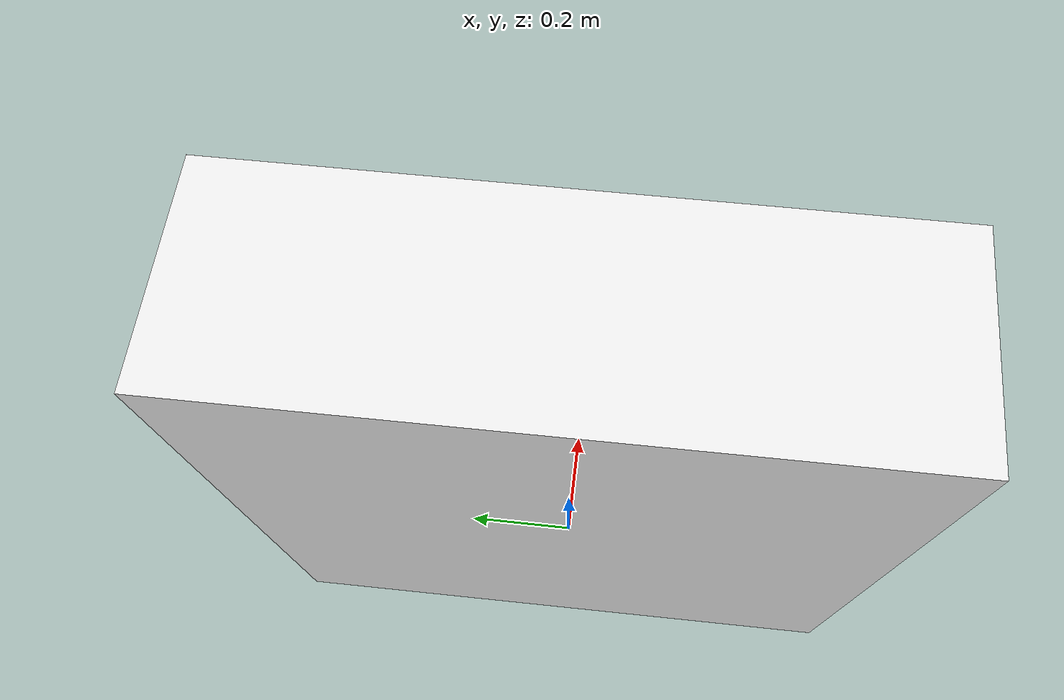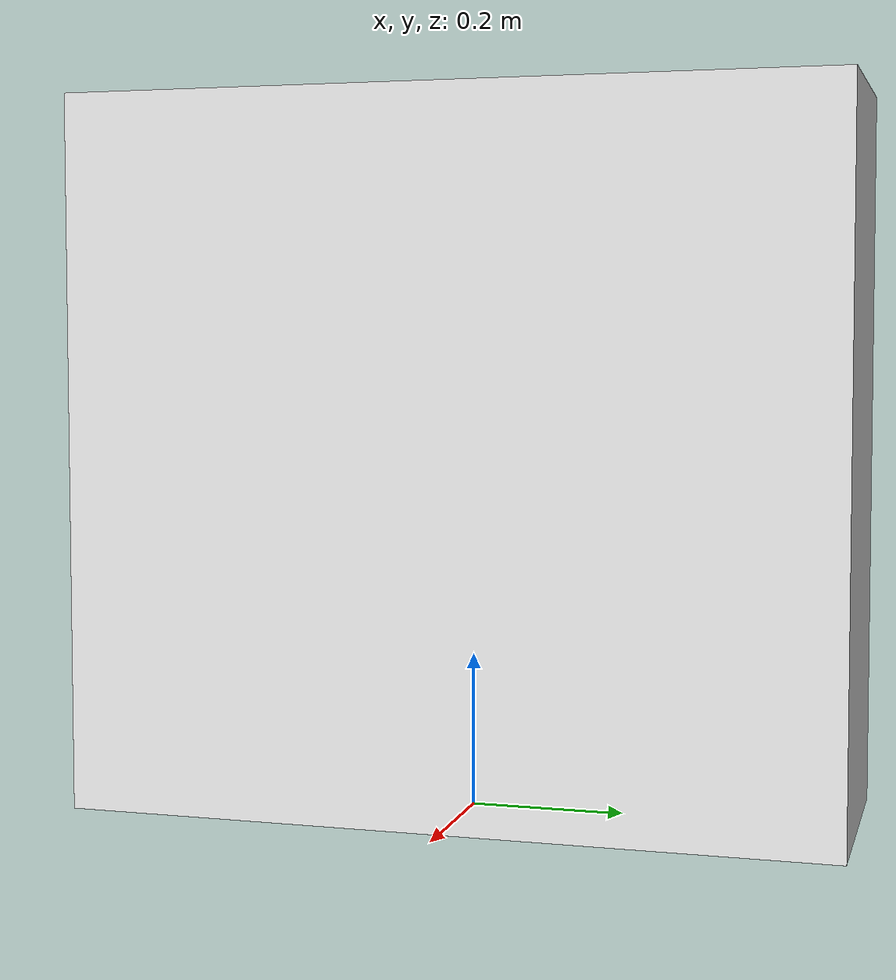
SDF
<?xml version="1.0"?>
<sdf version="1.6">
  <model name="rwc2015/kitchen_counter">
    <link name="1_link">
      <collision name="1_col">
        <geometry>
          <box>
            <size>0.33 1.0 0.93</size>
          </box>
        </geometry>
      </collision>
      <visual name="1_vis">
        <geometry>
          <box>
            <size>0.33 1.0 0.93</size>
          </box>
        </geometry>
        <material>
          <ambient>0.9 0.9 0.9 1</ambient>
        </material>
      </visual>
      <pose>0.0 0.0 0.465 0 0 0</pose>
    </link>
    <link name="in_front_of">
      <virtual_volume name="in_front_of_vv">
        <geometry>
          <box>
            <size>0.5 0.3 1</size>
          </box>
        </geometry>
        <pose>-0.55 0.0 0.5 0 0 0</pose>
      </virtual_volume>
    </link>
    <static>true</static>
  </model>
</sdf>
